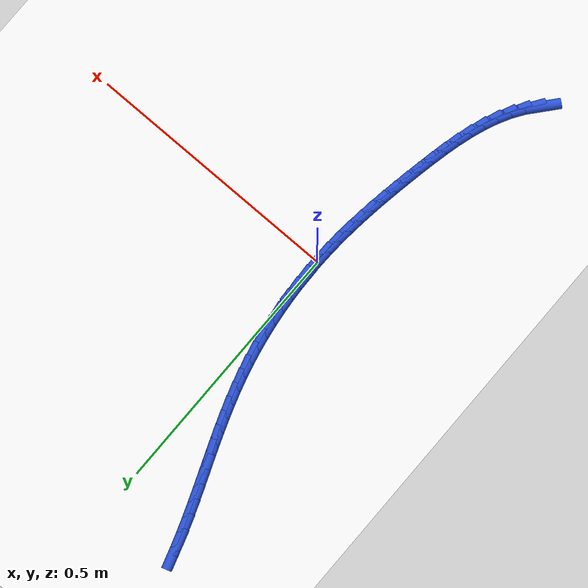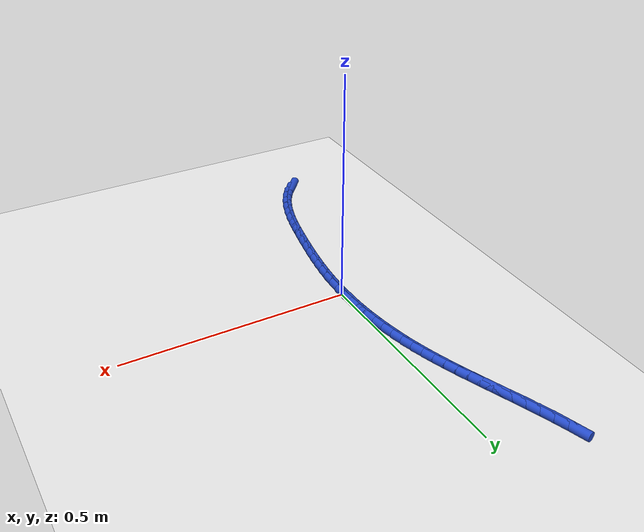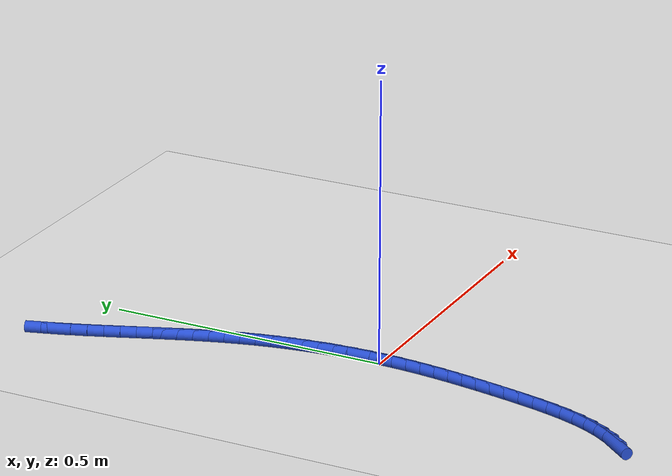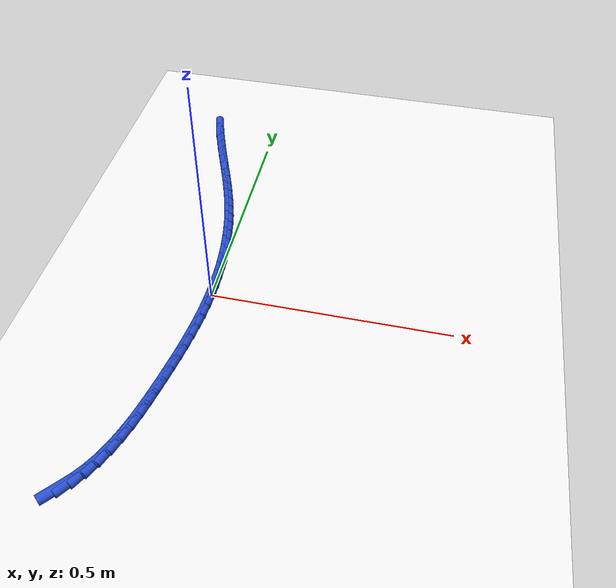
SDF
<sdf version="1.6">
 <world name="default">
  <model name="ground_plane">
   <static>1</static>
   <link name="link">
    <collision name="collision">
     <geometry><plane><normal>0 0 1</normal><size>100 100</size></plane></geometry>
     <surface><friction><ode><mu>100</mu><mu2>50</mu2></ode></friction></surface>
    </collision>
    <visual name="visual">
     <cast_shadows>0</cast_shadows>
     <geometry><plane><normal>0 0 1</normal><size>100 100</size></plane></geometry>
     <material>
      <script><uri>file://media/materials/scripts/gazebo.material</uri><name>Gazebo/WhiteGlow</name></script>
     </material>
    </visual>
   </link>
  </model>
  <model name="line">
   <link name="link_0">
    <pose>1.0842021724855044e-17 0.0 0.01 0 1.57 -1.5688465822195459</pose>
    <collision name="collision">
     <geometry><cylinder><radius>0.01</radius><length>0.08</length></cylinder></geometry>
    </collision>
    <visual name="visual">
     <material>
      <script><name>Gazebo/Blue</name><uri>file://media/materials/scripts/gazebo.material</uri></script>
     </material>
     <geometry><cylinder><radius>0.01</radius><length>0.08</length></cylinder></geometry>
    </visual>
   </link>
   <link name="link_1">
    <pose>-5.348200174946308e-05 0.027430225812608615 0.01 0 1.57 -1.5378914910945927</pose>
    <collision name="collision">
     <geometry><cylinder><radius>0.01</radius><length>0.08</length></cylinder></geometry>
    </collision>
    <visual name="visual">
     <material>
      <script><name>Gazebo/Blue</name><uri>file://media/materials/scripts/gazebo.material</uri></script>
     </material>
     <geometry><cylinder><radius>0.01</radius><length>0.08</length></cylinder></geometry>
    </visual>
   </link>
   <link name="link_2">
    <pose>-0.0009599994611930365 0.05496995503061004 0.01 0 1.57 -1.507321143701747</pose>
    <collision name="collision">
     <geometry><cylinder><radius>0.01</radius><length>0.08</length></cylinder></geometry>
    </collision>
    <visual name="visual">
     <material>
      <script><name>Gazebo/Blue</name><uri>file://media/materials/scripts/gazebo.material</uri></script>
     </material>
     <geometry><cylinder><radius>0.01</radius><length>0.08</length></cylinder></geometry>
    </visual>
   </link>
   <link name="link_3">
    <pose>-0.0027132564170398027 0.08255398954499665 0.01 0 1.57 -1.476972287797593</pose>
    <collision name="collision">
     <geometry><cylinder><radius>0.01</radius><length>0.08</length></cylinder></geometry>
    </collision>
    <visual name="visual">
     <material>
      <script><name>Gazebo/Blue</name><uri>file://media/materials/scripts/gazebo.material</uri></script>
     </material>
     <geometry><cylinder><radius>0.01</radius><length>0.08</length></cylinder></geometry>
    </visual>
   </link>
   <link name="link_4">
    <pose>-0.005306956907998856 0.11011713124676081 0.01 0 1.57 -1.4466844124608398</pose>
    <collision name="collision">
     <geometry><cylinder><radius>0.01</radius><length>0.08</length></cylinder></geometry>
    </collision>
    <visual name="visual">
     <material>
      <script><name>Gazebo/Blue</name><uri>file://media/materials/scripts/gazebo.material</uri></script>
     </material>
     <geometry><cylinder><radius>0.01</radius><length>0.08</length></cylinder></geometry>
    </visual>
   </link>
   <link name="link_5">
    <pose>-0.008734804972779292 0.13759418202689488 0.01 0 1.57 -1.4162979856792397</pose>
    <collision name="collision">
     <geometry><cylinder><radius>0.01</radius><length>0.08</length></cylinder></geometry>
    </collision>
    <visual name="visual">
     <material>
      <script><name>Gazebo/Blue</name><uri>file://media/materials/scripts/gazebo.material</uri></script>
     </material>
     <geometry><cylinder><radius>0.01</radius><length>0.08</length></cylinder></geometry>
    </visual>
   </link>
   <link name="link_6">
    <pose>-0.012990504650090197 0.1649199437763912 0.01 0 1.57 -1.3856527033590234</pose>
    <collision name="collision">
     <geometry><cylinder><radius>0.01</radius><length>0.08</length></cylinder></geometry>
    </collision>
    <visual name="visual">
     <material>
      <script><name>Gazebo/Blue</name><uri>file://media/materials/scripts/gazebo.material</uri></script>
     </material>
     <geometry><cylinder><radius>0.01</radius><length>0.08</length></cylinder></geometry>
    </visual>
   </link>
   <link name="link_7">
    <pose>-0.018067759978640675 0.19202921838624212 0.01 0 1.57 -1.3545857551453369</pose>
    <collision name="collision">
     <geometry><cylinder><radius>0.01</radius><length>0.08</length></cylinder></geometry>
    </collision>
    <visual name="visual">
     <material>
      <script><name>Gazebo/Blue</name><uri>file://media/materials/scripts/gazebo.material</uri></script>
     </material>
     <geometry><cylinder><radius>0.01</radius><length>0.08</length></cylinder></geometry>
    </visual>
   </link>
   <link name="link_8">
    <pose>-0.023960274997139812 0.21885680774743999 0.01 0 1.57 -1.3229398415529428</pose>
    <collision name="collision">
     <geometry><cylinder><radius>0.01</radius><length>0.08</length></cylinder></geometry>
    </collision>
    <visual name="visual">
     <material>
      <script><name>Gazebo/Blue</name><uri>file://media/materials/scripts/gazebo.material</uri></script>
     </material>
     <geometry><cylinder><radius>0.01</radius><length>0.08</length></cylinder></geometry>
    </visual>
   </link>
   <link name="link_9">
    <pose>-0.03066155177834134 0.24533779857087865 0.01 0 1.57 -1.2920609871710307</pose>
    <collision name="collision">
     <geometry><cylinder><radius>0.01</radius><length>0.08</length></cylinder></geometry>
    </collision>
    <visual name="visual">
     <material>
      <script><name>Gazebo/Blue</name><uri>file://media/materials/scripts/gazebo.material</uri></script>
     </material>
     <geometry><cylinder><radius>0.01</radius><length>0.08</length></cylinder></geometry>
    </visual>
   </link>
   <link name="link_10">
    <pose>-0.03813457680169587 0.27145031179201695 0.01 0 1.57 -1.2651243190940864</pose>
    <collision name="collision">
     <geometry><cylinder><radius>0.01</radius><length>0.08</length></cylinder></geometry>
    </collision>
    <visual name="visual">
     <material>
      <script><name>Gazebo/Blue</name><uri>file://media/materials/scripts/gazebo.material</uri></script>
     </material>
     <geometry><cylinder><radius>0.01</radius><length>0.08</length></cylinder></geometry>
    </visual>
   </link>
   <link name="link_11">
    <pose>-0.046279482842719384 0.29726110697716085 0.01 0 1.57 -1.2427190493931124</pose>
    <collision name="collision">
     <geometry><cylinder><radius>0.01</radius><length>0.08</length></cylinder></geometry>
    </collision>
    <visual name="visual">
     <material>
      <script><name>Gazebo/Blue</name><uri>file://media/materials/scripts/gazebo.material</uri></script>
     </material>
     <geometry><cylinder><radius>0.01</radius><length>0.08</length></cylinder></geometry>
    </visual>
   </link>
   <link name="link_12">
    <pose>-0.05498865389918024 0.3228478713071763 0.01 0 1.57 -1.2249878372315122</pose>
    <collision name="collision">
     <geometry><cylinder><radius>0.01</radius><length>0.08</length></cylinder></geometry>
    </collision>
    <visual name="visual">
     <material>
      <script><name>Gazebo/Blue</name><uri>file://media/materials/scripts/gazebo.material</uri></script>
     </material>
     <geometry><cylinder><radius>0.01</radius><length>0.08</length></cylinder></geometry>
    </visual>
   </link>
   <link name="link_13">
    <pose>-0.06415447396884685 0.34828829196292926 0.01 0 1.57 -1.212010400052711</pose>
    <collision name="collision">
     <geometry><cylinder><radius>0.01</radius><length>0.08</length></cylinder></geometry>
    </collision>
    <visual name="visual">
     <material>
      <script><name>Gazebo/Blue</name><uri>file://media/materials/scripts/gazebo.material</uri></script>
     </material>
     <geometry><cylinder><radius>0.01</radius><length>0.08</length></cylinder></geometry>
    </visual>
   </link>
   <link name="link_14">
    <pose>-0.0736693270494876 0.37366005612528597 0.01 0 1.57 -1.2038138239094271</pose>
    <collision name="collision">
     <geometry><cylinder><radius>0.01</radius><length>0.08</length></cylinder></geometry>
    </collision>
    <visual name="visual">
     <material>
      <script><name>Gazebo/Blue</name><uri>file://media/materials/scripts/gazebo.material</uri></script>
     </material>
     <geometry><cylinder><radius>0.01</radius><length>0.08</length></cylinder></geometry>
    </visual>
   </link>
   <link name="link_15">
    <pose>-0.0834255971388709 0.3990408509751124 0.01 0 1.57 -1.2003813221050232</pose>
    <collision name="collision">
     <geometry><cylinder><radius>0.01</radius><length>0.08</length></cylinder></geometry>
    </collision>
    <visual name="visual">
     <material>
      <script><name>Gazebo/Blue</name><uri>file://media/materials/scripts/gazebo.material</uri></script>
     </material>
     <geometry><cylinder><radius>0.01</radius><length>0.08</length></cylinder></geometry>
    </visual>
   </link>
   <link name="link_16">
    <pose>-0.09331566823476516 0.4245083636932746 0.01 0 1.57 -1.2016586817462587</pose>
    <collision name="collision">
     <geometry><cylinder><radius>0.01</radius><length>0.08</length></cylinder></geometry>
    </collision>
    <visual name="visual">
     <material>
      <script><name>Gazebo/Blue</name><uri>file://media/materials/scripts/gazebo.material</uri></script>
     </material>
     <geometry><cylinder><radius>0.01</radius><length>0.08</length></cylinder></geometry>
    </visual>
   </link>
   <link name="link_17">
    <pose>-0.10323192433493875 0.4501402814606388 0.01 0 1.57 -1.2075580912577946</pose>
    <collision name="collision">
     <geometry><cylinder><radius>0.01</radius><length>0.08</length></cylinder></geometry>
    </collision>
    <visual name="visual">
     <material>
      <script><name>Gazebo/Blue</name><uri>file://media/materials/scripts/gazebo.material</uri></script>
     </material>
     <geometry><cylinder><radius>0.01</radius><length>0.08</length></cylinder></geometry>
    </visual>
   </link>
   <link name="link_18">
    <pose>-0.11306674943716007 0.47601429145807084 0.01 0 1.57 -1.2179594094985253</pose>
    <collision name="collision">
     <geometry><cylinder><radius>0.01</radius><length>0.08</length></cylinder></geometry>
    </collision>
    <visual name="visual">
     <material>
      <script><name>Gazebo/Blue</name><uri>file://media/materials/scripts/gazebo.material</uri></script>
     </material>
     <geometry><cylinder><radius>0.01</radius><length>0.08</length></cylinder></geometry>
    </visual>
   </link>
   <link name="link_19">
    <pose>-0.12271252753919752 0.5022080808664368 0.01 0 1.57 -1.2327092299663367</pose>
    <collision name="collision">
     <geometry><cylinder><radius>0.01</radius><length>0.08</length></cylinder></geometry>
    </collision>
    <visual name="visual">
     <material>
      <script><name>Gazebo/Blue</name><uri>file://media/materials/scripts/gazebo.material</uri></script>
     </material>
     <geometry><cylinder><radius>0.01</radius><length>0.08</length></cylinder></geometry>
    </visual>
   </link>
   <link name="link_20">
    <pose>-0.1320616426388195 0.528799336866603 0.01 0 1.57 -1.251618331947948</pose>
    <collision name="collision">
     <geometry><cylinder><radius>0.01</radius><length>0.08</length></cylinder></geometry>
    </collision>
    <visual name="visual">
     <material>
      <script><name>Gazebo/Blue</name><uri>file://media/materials/scripts/gazebo.material</uri></script>
     </material>
     <geometry><cylinder><radius>0.01</radius><length>0.08</length></cylinder></geometry>
    </visual>
   </link>
   <link name="link_21">
    <pose>-0.14100647873379443 0.5558657466394351 0.01 0 1.57 -1.27356786674709</pose>
    <collision name="collision">
     <geometry><cylinder><radius>0.01</radius><length>0.08</length></cylinder></geometry>
    </collision>
    <visual name="visual">
     <material>
      <script><name>Gazebo/Blue</name><uri>file://media/materials/scripts/gazebo.material</uri></script>
     </material>
     <geometry><cylinder><radius>0.01</radius><length>0.08</length></cylinder></geometry>
    </visual>
   </link>
   <link name="link_242">
    <pose>-0.12261947625831089 -0.4736314727505528 0.01 0 1.57 0.8665754679138209</pose>
    <collision name="collision">
     <geometry><cylinder><radius>0.01</radius><length>0.08</length></cylinder></geometry>
    </collision>
    <visual name="visual">
     <material>
      <script><name>Gazebo/Blue</name><uri>file://media/materials/scripts/gazebo.material</uri></script>
     </material>
     <geometry><cylinder><radius>0.01</radius><length>0.08</length></cylinder></geometry>
    </visual>
   </link>
   <link name="link_243">
    <pose>-0.10559621399349642 -0.453593013810555 0.01 0 1.57 0.9790541796356982</pose>
    <collision name="collision">
     <geometry><cylinder><radius>0.01</radius><length>0.08</length></cylinder></geometry>
    </collision>
    <visual name="visual">
     <material>
      <script><name>Gazebo/Blue</name><uri>file://media/materials/scripts/gazebo.material</uri></script>
     </material>
     <geometry><cylinder><radius>0.01</radius><length>0.08</length></cylinder></geometry>
    </visual>
   </link>
   <link name="link_244">
    <pose>-0.09081279647704495 -0.4315965566694287 0.01 0 1.57 1.0762726867925059</pose>
    <collision name="collision">
     <geometry><cylinder><radius>0.01</radius><length>0.08</length></cylinder></geometry>
    </collision>
    <visual name="visual">
     <material>
      <script><name>Gazebo/Blue</name><uri>file://media/materials/scripts/gazebo.material</uri></script>
     </material>
     <geometry><cylinder><radius>0.01</radius><length>0.08</length></cylinder></geometry>
    </visual>
   </link>
   <link name="link_245">
    <pose>-0.07804009981706872 -0.40790888638948003 0.01 0 1.57 1.1578094429543129</pose>
    <collision name="collision">
     <geometry><cylinder><radius>0.01</radius><length>0.08</length></cylinder></geometry>
    </collision>
    <visual name="visual">
     <material>
      <script><name>Gazebo/Blue</name><uri>file://media/materials/scripts/gazebo.material</uri></script>
     </material>
     <geometry><cylinder><radius>0.01</radius><length>0.08</length></cylinder></geometry>
    </visual>
   </link>
   <link name="link_246">
    <pose>-0.06704020627106165 -0.3828056889056408 0.01 0 1.57 1.2246500561425226</pose>
    <collision name="collision">
     <geometry><cylinder><radius>0.01</radius><length>0.08</length></cylinder></geometry>
    </collision>
    <visual name="visual">
     <material>
      <script><name>Gazebo/Blue</name><uri>file://media/materials/scripts/gazebo.material</uri></script>
     </material>
     <geometry><cylinder><radius>0.01</radius><length>0.08</length></cylinder></geometry>
    </visual>
   </link>
   <link name="link_247">
    <pose>-0.057575198096516594 -0.3565626501528416 0.01 0 1.57 1.2781255537015053</pose>
    <collision name="collision">
     <geometry><cylinder><radius>0.01</radius><length>0.08</length></cylinder></geometry>
    </collision>
    <visual name="visual">
     <material>
      <script><name>Gazebo/Blue</name><uri>file://media/materials/scripts/gazebo.material</uri></script>
     </material>
     <geometry><cylinder><radius>0.01</radius><length>0.08</length></cylinder></geometry>
    </visual>
   </link>
   <link name="link_248">
    <pose>-0.04940715755092671 -0.32945545606601306 0.01 0 1.57 1.319538258347334</pose>
    <collision name="collision">
     <geometry><cylinder><radius>0.01</radius><length>0.08</length></cylinder></geometry>
    </collision>
    <visual name="visual">
     <material>
      <script><name>Gazebo/Blue</name><uri>file://media/materials/scripts/gazebo.material</uri></script>
     </material>
     <geometry><cylinder><radius>0.01</radius><length>0.08</length></cylinder></geometry>
    </visual>
   </link>
   <link name="link_249">
    <pose>-0.04229816689178525 -0.3017597925800861 0.01 0 1.57 1.3499591282646137</pose>
    <collision name="collision">
     <geometry><cylinder><radius>0.01</radius><length>0.08</length></cylinder></geometry>
    </collision>
    <visual name="visual">
     <material>
      <script><name>Gazebo/Blue</name><uri>file://media/materials/scripts/gazebo.material</uri></script>
     </material>
     <geometry><cylinder><radius>0.01</radius><length>0.08</length></cylinder></geometry>
    </visual>
   </link>
   <link name="link_250">
    <pose>-0.0360103083765854 -0.2737513456299916 0.01 0 1.57 1.3701275082777373</pose>
    <collision name="collision">
     <geometry><cylinder><radius>0.01</radius><length>0.08</length></cylinder></geometry>
    </collision>
    <visual name="visual">
     <material>
      <script><name>Gazebo/Blue</name><uri>file://media/materials/scripts/gazebo.material</uri></script>
     </material>
     <geometry><cylinder><radius>0.01</radius><length>0.08</length></cylinder></geometry>
    </visual>
   </link>
   <link name="link_251">
    <pose>-0.030305664262820352 -0.2457058011506602 0.01 0 1.57 1.3813676430508801</pose>
    <collision name="collision">
     <geometry><cylinder><radius>0.01</radius><length>0.08</length></cylinder></geometry>
    </collision>
    <visual name="visual">
     <material>
      <script><name>Gazebo/Blue</name><uri>file://media/materials/scripts/gazebo.material</uri></script>
     </material>
     <geometry><cylinder><radius>0.01</radius><length>0.08</length></cylinder></geometry>
    </visual>
   </link>
   <link name="link_252">
    <pose>-0.024969468674469135 -0.21787360786506071 0.01 0 1.57 1.3915949556963334</pose>
    <collision name="collision">
     <geometry><cylinder><radius>0.01</radius><length>0.08</length></cylinder></geometry>
    </collision>
    <visual name="visual">
     <material>
      <script><name>Gazebo/Blue</name><uri>file://media/materials/scripts/gazebo.material</uri></script>
     </material>
     <geometry><cylinder><radius>0.01</radius><length>0.08</length></cylinder></geometry>
    </visual>
   </link>
   <link name="link_253">
    <pose>-0.019974750586396098 -0.19030050450183575 0.01 0 1.57 1.404660894690284</pose>
    <collision name="collision">
     <geometry><cylinder><radius>0.01</radius><length>0.08</length></cylinder></geometry>
    </collision>
    <visual name="visual">
     <material>
      <script><name>Gazebo/Blue</name><uri>file://media/materials/scripts/gazebo.material</uri></script>
     </material>
     <geometry><cylinder><radius>0.01</radius><length>0.08</length></cylinder></geometry>
    </visual>
   </link>
   <link name="link_254">
    <pose>-0.015385713732234818 -0.16293284269640787 0.01 0 1.57 1.420610515470131</pose>
    <collision name="collision">
     <geometry><cylinder><radius>0.01</radius><length>0.08</length></cylinder></geometry>
    </collision>
    <visual name="visual">
     <material>
      <script><name>Gazebo/Blue</name><uri>file://media/materials/scripts/gazebo.material</uri></script>
     </material>
     <geometry><cylinder><radius>0.01</radius><length>0.08</length></cylinder></geometry>
    </visual>
   </link>
   <link name="link_255">
    <pose>-0.011267165281281471 -0.13571631629560602 0.01 0 1.57 1.439429929694492</pose>
    <collision name="collision">
     <geometry><cylinder><radius>0.01</radius><length>0.08</length></cylinder></geometry>
    </collision>
    <visual name="visual">
     <material>
      <script><name>Gazebo/Blue</name><uri>file://media/materials/scripts/gazebo.material</uri></script>
     </material>
     <geometry><cylinder><radius>0.01</radius><length>0.08</length></cylinder></geometry>
    </visual>
   </link>
   <link name="link_256">
    <pose>-0.007683912402832237 -0.1085966191462592 0.01 0 1.57 1.4610667238864354</pose>
    <collision name="collision">
     <geometry><cylinder><radius>0.01</radius><length>0.08</length></cylinder></geometry>
    </collision>
    <visual name="visual">
     <material>
      <script><name>Gazebo/Blue</name><uri>file://media/materials/scripts/gazebo.material</uri></script>
     </material>
     <geometry><cylinder><radius>0.01</radius><length>0.08</length></cylinder></geometry>
    </visual>
   </link>
   <link name="link_257">
    <pose>-0.004700762266183293 -0.08151944509519624 0.01 0 1.57 1.4854255401813516</pose>
    <collision name="collision">
     <geometry><cylinder><radius>0.01</radius><length>0.08</length></cylinder></geometry>
    </collision>
    <visual name="visual">
     <material>
      <script><name>Gazebo/Blue</name><uri>file://media/materials/scripts/gazebo.material</uri></script>
     </material>
     <geometry><cylinder><radius>0.01</radius><length>0.08</length></cylinder></geometry>
    </visual>
   </link>
   <link name="link_258">
    <pose>-0.002382522040630818 -0.054430487989246074 0.01 0 1.57 1.5123646512312863</pose>
    <collision name="collision">
     <geometry><cylinder><radius>0.01</radius><length>0.08</length></cylinder></geometry>
    </collision>
    <visual name="visual">
     <material>
      <script><name>Gazebo/Blue</name><uri>file://media/materials/scripts/gazebo.material</uri></script>
     </material>
     <geometry><cylinder><radius>0.01</radius><length>0.08</length></cylinder></geometry>
    </visual>
   </link>
   <link name="link_259">
    <pose>-0.0007939988954709853 -0.027275441675237627 0.01 0 1.57 1.541694149947893</pose>
    <collision name="collision">
     <geometry><cylinder><radius>0.01</radius><length>0.08</length></cylinder></geometry>
    </collision>
    <visual name="visual">
     <material>
      <script><name>Gazebo/Blue</name><uri>file://media/materials/scripts/gazebo.material</uri></script>
     </material>
     <geometry><cylinder><radius>0.01</radius><length>0.08</length></cylinder></geometry>
    </visual>
   </link>
   <link name="link_260">
    <pose>2.2985086056692694e-17 2.220446049250313e-16 0.01 0 1.57 -1.568416288202672</pose>
    <collision name="collision">
     <geometry><cylinder><radius>0.01</radius><length>0.08</length></cylinder></geometry>
    </collision>
    <visual name="visual">
     <material>
      <script><name>Gazebo/Blue</name><uri>file://media/materials/scripts/gazebo.material</uri></script>
     </material>
     <geometry><cylinder><radius>0.01</radius><length>0.08</length></cylinder></geometry>
    </visual>
   </link>
   <link name="link_261">
    <pose>-6.533252351396956e-05 0.027450143189638523 0.01 0 1.57 -1.5350636573089549</pose>
    <collision name="collision">
     <geometry><cylinder><radius>0.01</radius><length>0.08</length></cylinder></geometry>
    </collision>
    <visual name="visual">
     <material>
      <script><name>Gazebo/Blue</name><uri>file://media/materials/scripts/gazebo.material</uri></script>
     </material>
     <geometry><cylinder><radius>0.01</radius><length>0.08</length></cylinder></geometry>
    </visual>
   </link>
   <link name="link_262">
    <pose>-0.0010548036353091412 0.055129294046848416 0.01 0 1.57 -1.5516653916553422</pose>
    <collision name="collision">
     <geometry><cylinder><radius>0.01</radius><length>0.08</length></cylinder></geometry>
    </collision>
    <visual name="visual">
     <material>
      <script><name>Gazebo/Blue</name><uri>file://media/materials/scripts/gazebo.material</uri></script>
     </material>
     <geometry><cylinder><radius>0.01</radius><length>0.08</length></cylinder></geometry>
    </visual>
   </link>
  </model>
 </world>
</sdf>
